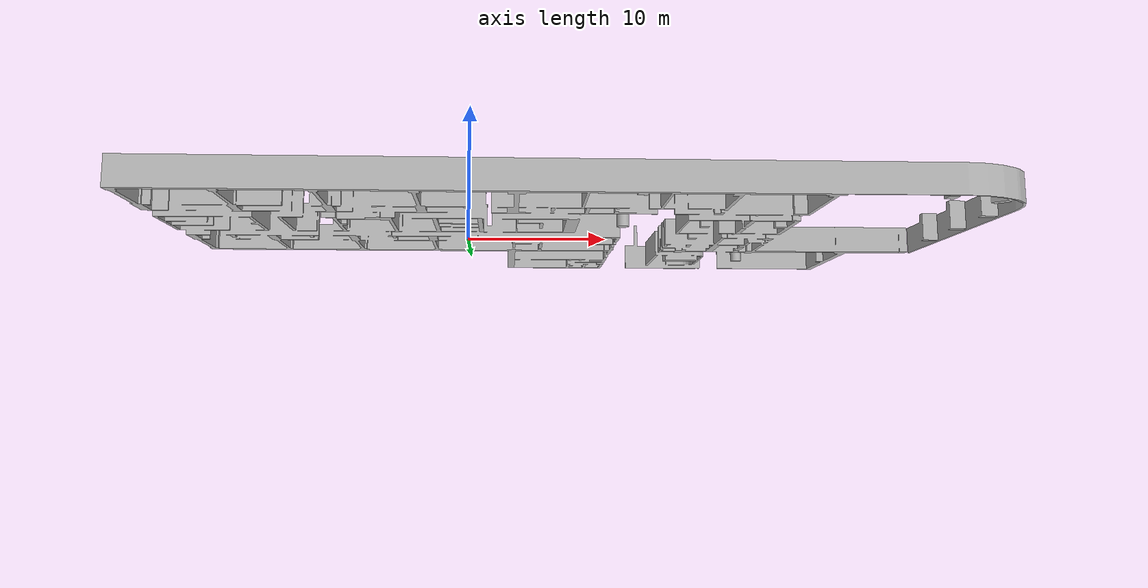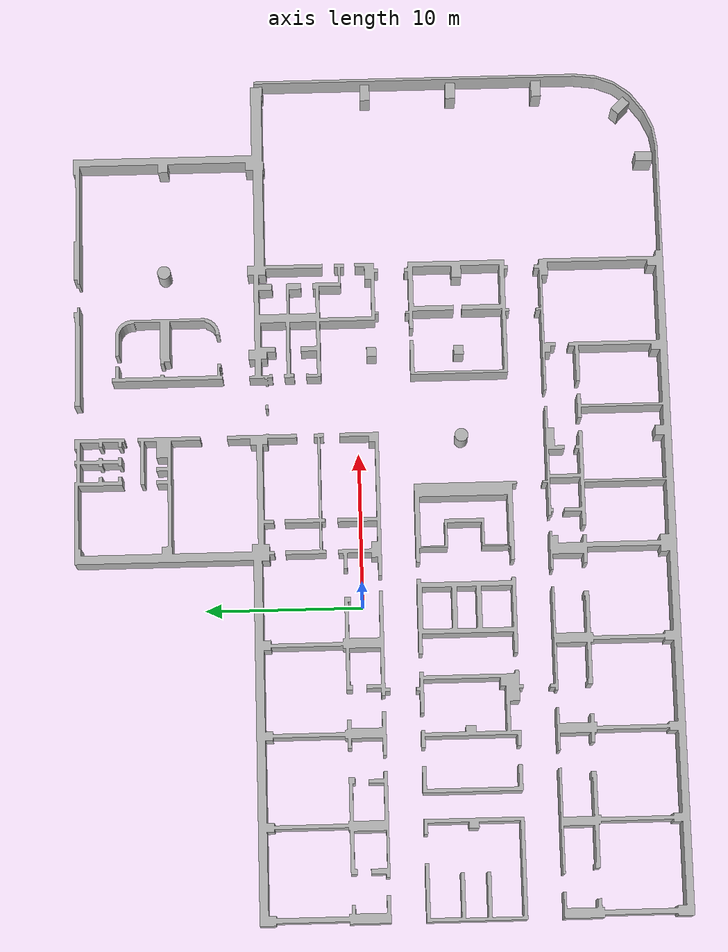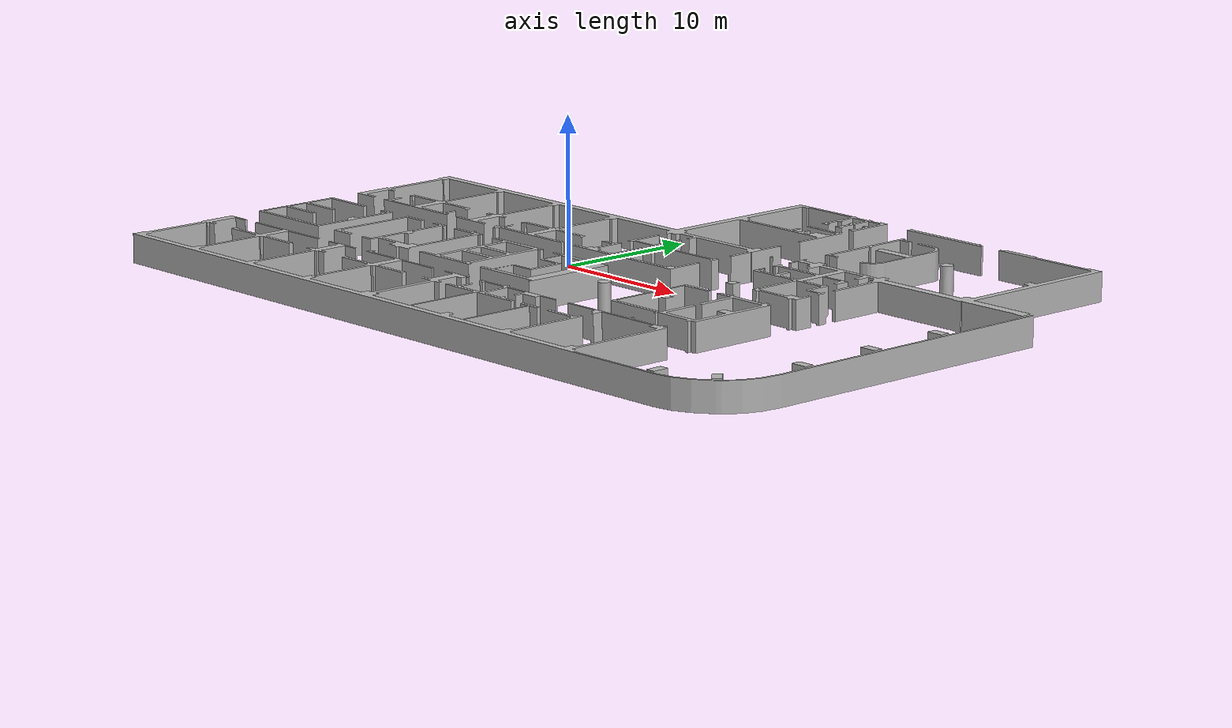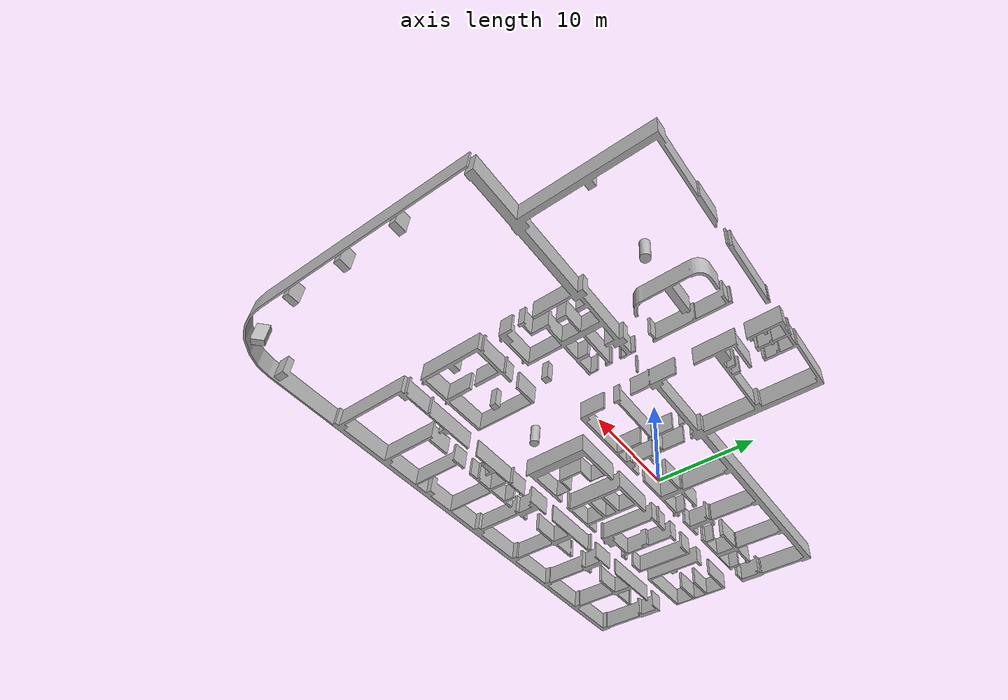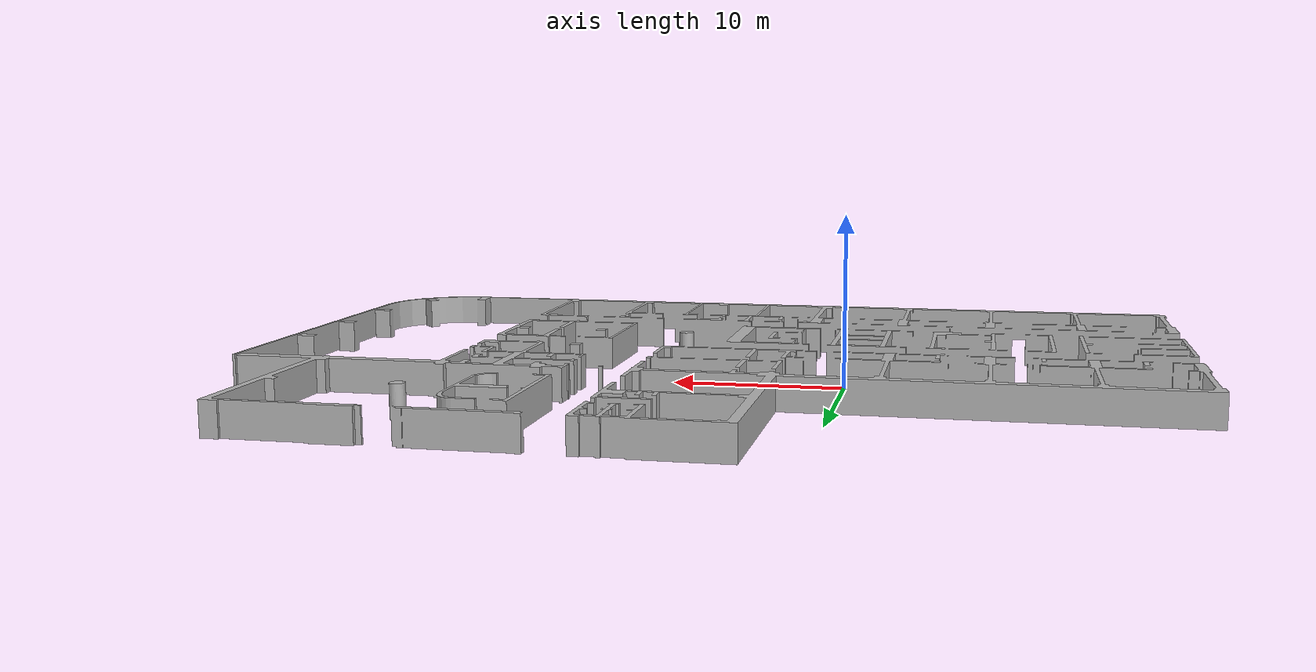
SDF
<?xml version="1.0" ?>
<sdf version="1.3">
  <model name="fundazionesl">
    <static>true</static>
    <pose>-20 -20 0 0 0 0</pose>
    <link name="walls">
      <collision name="collision">
        <geometry>
          <mesh>
            <uri>model://fundazionesl/meshes/fundazione_floor.dae</uri>
          </mesh>
        </geometry>
      </collision>
      <visual name="visual">
        <geometry>
          <mesh>
            <uri>model://fundazionesl/meshes/fundazione_floor.dae</uri>
          </mesh>
        </geometry>
        <cast_shadows>false</cast_shadows>
      </visual>
    </link>
  </model>
</sdf>
